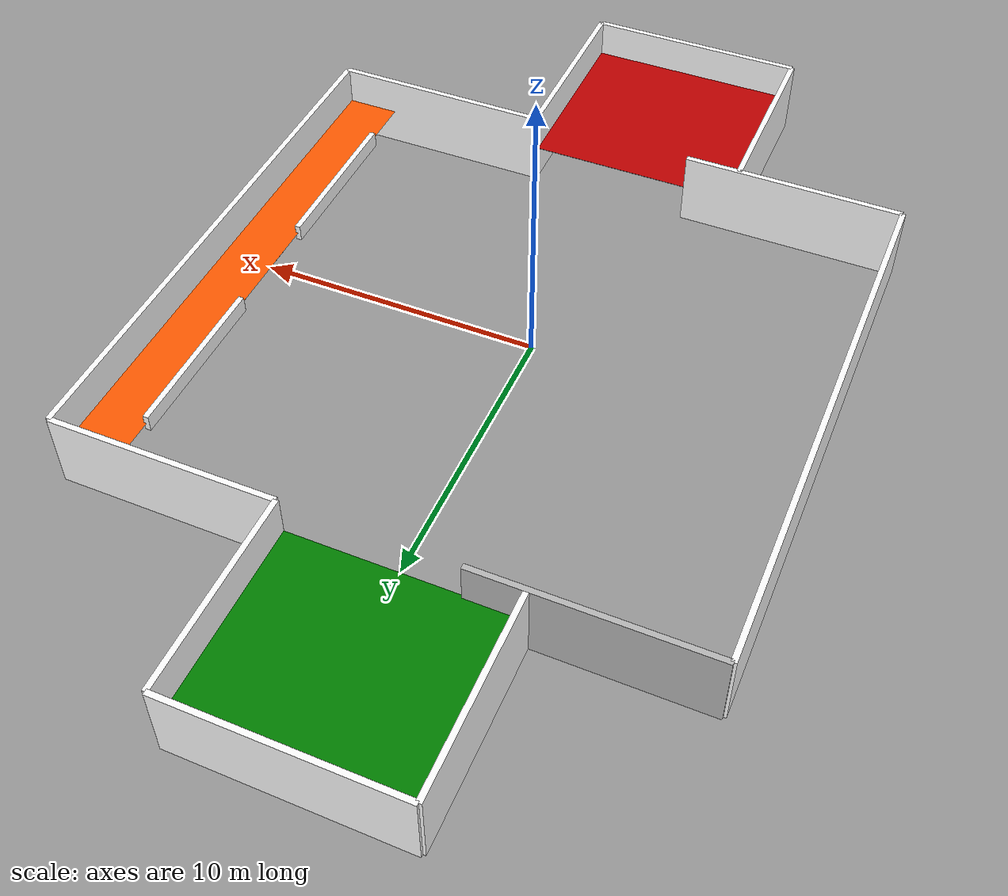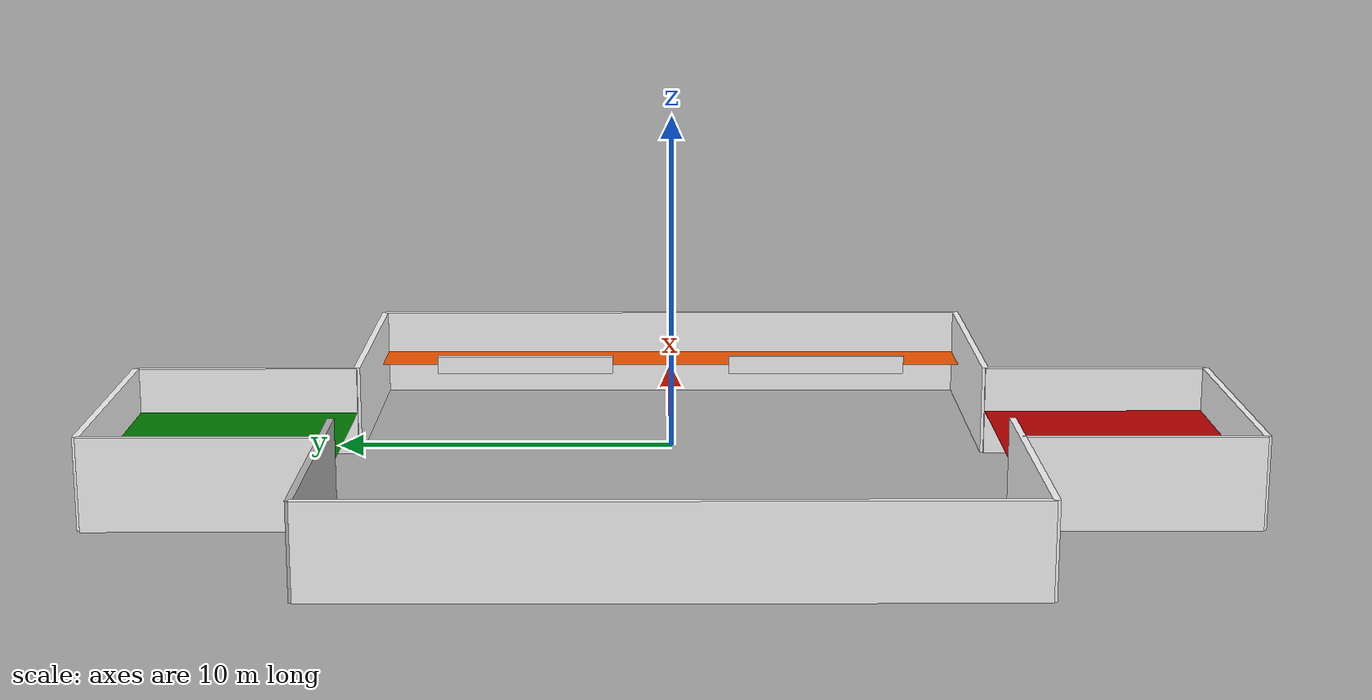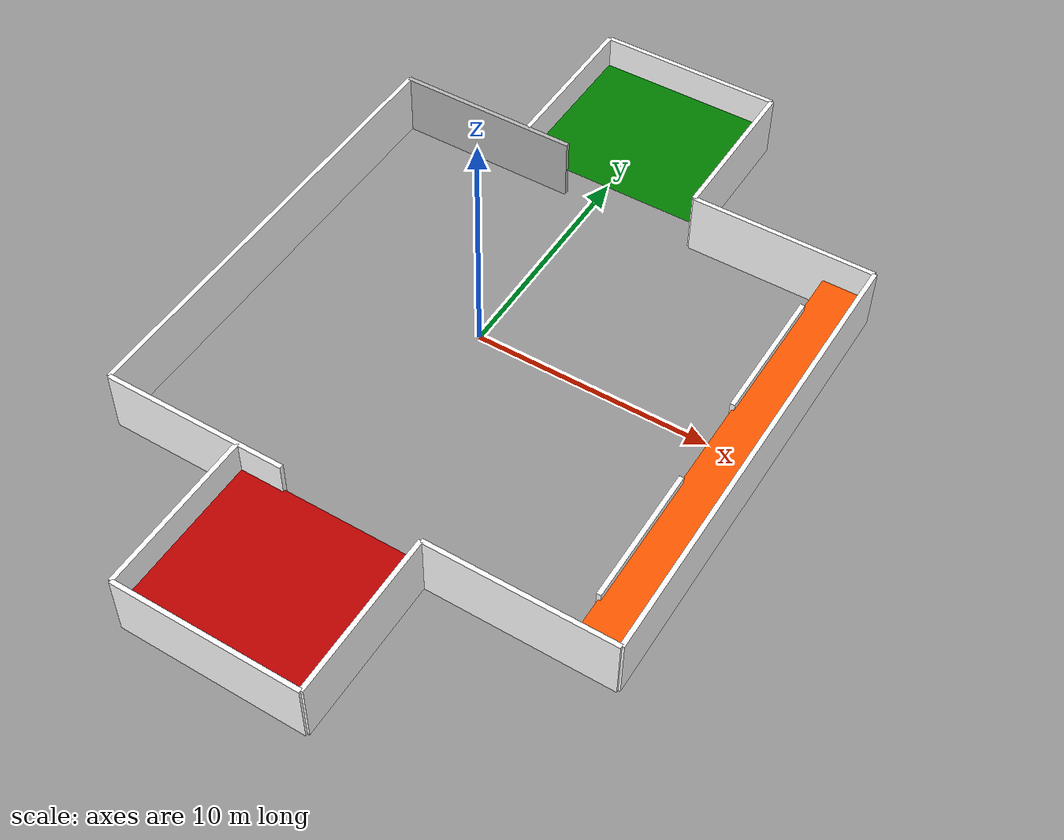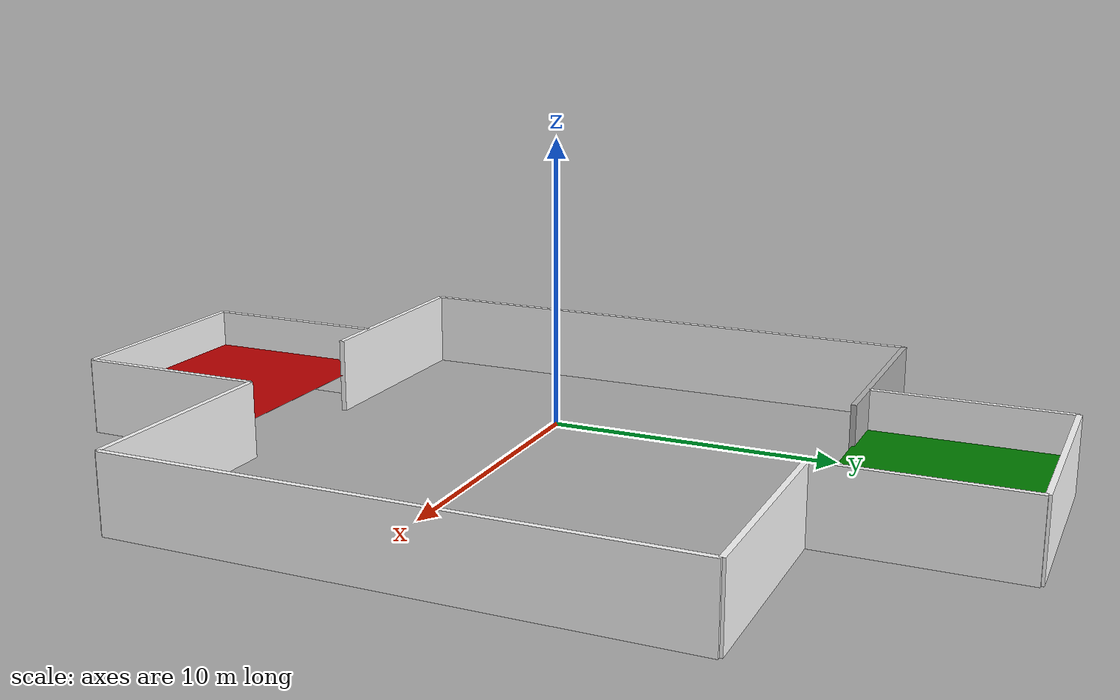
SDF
<?xml version="1.0" ?>
<sdf version="1.5">
  <model name="warehouse_walls">
    <static>true</static>

    <link name="wall0_link0">
      <pose>-10 0 0 0 0 1.57</pose>
      <collision name="collision">
        <geometry>
          <box>
            <size>20 0.2 2.8</size>
          </box>
        </geometry>
      </collision>
      <visual name="visual">
        <cast_shadows>false</cast_shadows>
        <geometry>
          <box>
            <size>20 0.2 2.8</size>
          </box>
        </geometry>
        <material>
          <diffuse>1.0 1.0 1.0</diffuse>
          <specular>1.0 1.0 1.0</specular>
          <pbr>
            <metal>
              <albedo_map>model://warehouse_walls/materials/textures/grey_wall.png</albedo_map>
            </metal>
          </pbr>
        </material>
      </visual>
    </link>

    <link name="wall1_link0">
      <pose>8 -10 0 0 0 0</pose>
      <collision name="collision">
        <geometry>
          <box>
            <size>8 0.2 2.8</size>
          </box>
        </geometry>
      </collision>
      <visual name="visual">
        <cast_shadows>false</cast_shadows>
        <geometry>
          <box>
            <size>8 0.2 2.8</size>
          </box>
        </geometry>
        <material>
          <diffuse>1.0 1.0 1.0</diffuse>
          <specular>1.0 1.0 1.0</specular>
          <pbr>
            <metal>
              <albedo_map>model://warehouse_walls/materials/textures/grey_wall.png</albedo_map>
            </metal>
          </pbr>
        </material>
      </visual>
    </link>

    <link name="wall1_link1">
      <pose>4 -13.5 0 0 0 1.57</pose>
      <collision name="collision">
        <geometry>
          <box>
            <size>7 0.2 2.8</size>
          </box>
        </geometry>
      </collision>
      <visual name="visual">
        <cast_shadows>false</cast_shadows>
        <geometry>
          <box>
            <size>7 0.2 2.8</size>
          </box>
        </geometry>
        <material>
          <diffuse>1.0 1.0 1.0</diffuse>
          <specular>1.0 1.0 1.0</specular>
          <pbr>
            <metal>
              <albedo_map>model://warehouse_walls/materials/textures/grey_wall.png</albedo_map>
            </metal>
          </pbr>
        </material>
      </visual>
    </link>

    <link name="wall1_link2">
      <pose>0 -17 0 0 0 0</pose>
      <collision name="collision">
        <geometry>
          <box>
            <size>8 0.2 2.8</size>
          </box>
        </geometry>
      </collision>
      <visual name="visual">
        <cast_shadows>false</cast_shadows>
        <geometry>
          <box>
            <size>8 0.2 2.8</size>
          </box>
        </geometry>
        <material>
          <diffuse>1.0 1.0 1.0</diffuse>
          <specular>1.0 1.0 1.0</specular>
          <pbr>
            <metal>
              <albedo_map>model://warehouse_walls/materials/textures/grey_wall.png</albedo_map>
            </metal>
          </pbr>
        </material>
      </visual>
    </link>

    <link name="wall1_link3">
      <pose>-4 -13.5 0 0 0 1.57</pose>
      <collision name="collision">
        <geometry>
          <box>
            <size>7 0.2 2.8</size>
          </box>
        </geometry>
      </collision>
      <visual name="visual">
        <cast_shadows>false</cast_shadows>
        <geometry>
          <box>
            <size>7 0.2 2.8</size>
          </box>
        </geometry>
        <material>
          <diffuse>1.0 1.0 1.0</diffuse>
          <specular>1.0 1.0 1.0</specular>
          <pbr>
            <metal>
              <albedo_map>model://warehouse_walls/materials/textures/grey_wall.png</albedo_map>
            </metal>
          </pbr>
        </material>
      </visual>
    </link>

    <link name="wall1_link4">
      <pose>-6 -10 0 0 0 0</pose>
      <collision name="collision">
        <geometry>
          <box>
            <size>8 0.2 2.8</size>
          </box>
        </geometry>
      </collision>
      <visual name="visual">
        <cast_shadows>false</cast_shadows>
        <geometry>
          <box>
            <size>8 0.2 2.8</size>
          </box>
        </geometry>
        <material>
          <diffuse>1.0 1.0 1.0</diffuse>
          <specular>1.0 1.0 1.0</specular>
          <pbr>
            <metal>
              <albedo_map>model://warehouse_walls/materials/textures/grey_wall.png</albedo_map>
            </metal>
          </pbr>
        </material>
      </visual>
    </link>

    <link name="wall2_link0">
      <pose>8 10 0 0 0 0</pose>
      <collision name="collision">
        <geometry>
          <box>
            <size>8 0.2 2.8</size>
          </box>
        </geometry>
      </collision>
      <visual name="visual">
        <cast_shadows>false</cast_shadows>
        <geometry>
          <box>
            <size>8 0.2 2.8</size>
          </box>
        </geometry>
        <material>
          <diffuse>1.0 1.0 1.0</diffuse>
          <specular>1.0 1.0 1.0</specular>
          <pbr>
            <metal>
              <albedo_map>model://warehouse_walls/materials/textures/grey_wall.png</albedo_map>
            </metal>
          </pbr>
        </material>
      </visual>
    </link>

    <link name="wall2_link1">
      <pose>4 13.5 0 0 0 1.57</pose>
      <collision name="collision">
        <geometry>
          <box>
            <size>7 0.2 2.8</size>
          </box>
        </geometry>
      </collision>
      <visual name="visual">
        <cast_shadows>false</cast_shadows>
        <geometry>
          <box>
            <size>7 0.2 2.8</size>
          </box>
        </geometry>
        <material>
          <diffuse>1.0 1.0 1.0</diffuse>
          <specular>1.0 1.0 1.0</specular>
          <pbr>
            <metal>
              <albedo_map>model://warehouse_walls/materials/textures/grey_wall.png</albedo_map>
            </metal>
          </pbr>
        </material>
      </visual>
    </link>

    <link name="wall2_link2">
      <pose>0 17 0 0 0 0</pose>
      <collision name="collision">
        <geometry>
          <box>
            <size>8 0.2 2.8</size>
          </box>
        </geometry>
      </collision>
      <visual name="visual">
        <cast_shadows>false</cast_shadows>
        <geometry>
          <box>
            <size>8 0.2 2.8</size>
          </box>
        </geometry>
        <material>
          <diffuse>1.0 1.0 1.0</diffuse>
          <specular>1.0 1.0 1.0</specular>
          <pbr>
            <metal>
              <albedo_map>model://warehouse_walls/materials/textures/grey_wall.png</albedo_map>
            </metal>
          </pbr>
        </material>
      </visual>
    </link>

    <link name="wall2_link3">
      <pose>-4 13.5 0 0 0 1.57</pose>
      <collision name="collision">
        <geometry>
          <box>
            <size>7 0.2 2.8</size>
          </box>
        </geometry>
      </collision>
      <visual name="visual">
        <cast_shadows>false</cast_shadows>
        <geometry>
          <box>
            <size>7 0.2 2.8</size>
          </box>
        </geometry>
        <material>
          <diffuse>1.0 1.0 1.0</diffuse>
          <specular>1.0 1.0 1.0</specular>
          <pbr>
            <metal>
              <albedo_map>model://warehouse_walls/materials/textures/grey_wall.png</albedo_map>
            </metal>
          </pbr>
        </material>
      </visual>
    </link>

    <link name="wall2_link4">
      <pose>-6 10 0 0 0 0</pose>
      <collision name="collision">
        <geometry>
          <box>
            <size>8 0.2 2.8</size>
          </box>
        </geometry>
      </collision>
      <visual name="visual">
        <cast_shadows>false</cast_shadows>
        <geometry>
          <box>
            <size>8 0.2 2.8</size>
          </box>
        </geometry>
        <material>
          <pbr>
            <metal>
              <albedo_map>model://warehouse_walls/materials/textures/grey_wall.png</albedo_map>
            </metal>
          </pbr>
        </material>
      </visual>
    </link>

    <link name="wall3_link0">
      <pose>12 0 0 0 0 1.57</pose>
      <collision name="collision">
        <geometry>
          <box>
            <size>20 0.2 2.8</size>
          </box>
        </geometry>
      </collision>
      <visual name="visual">
        <cast_shadows>false</cast_shadows>
        <geometry>
          <box>
            <size>20 0.2 2.8</size>
          </box>
        </geometry>
        <material>
          <diffuse>1.0 1.0 1.0</diffuse>
          <specular>1.0 1.0 1.0</specular>
          <pbr>
            <metal>
              <albedo_map>model://warehouse_walls/materials/textures/grey_wall.png</albedo_map>
            </metal>
          </pbr>
        </material>
      </visual>
    </link>

    <link name="wall4_link0">
      <pose>10 -5 0 0 0 1.57</pose>
      <collision name="collision">
        <geometry>
          <box>
            <size>6 0.2 0.6</size>
          </box>
        </geometry>
      </collision>
      <visual name="visual">
        <cast_shadows>false</cast_shadows>
        <geometry>
          <box>
            <size>6 0.2 0.6</size>
          </box>
        </geometry>
        <material>
          <diffuse>1.0 1.0 1.0</diffuse>
          <specular>1.0 1.0 1.0</specular>
          <pbr>
            <metal>
              <albedo_map>model://warehouse_walls/materials/textures/grey_wall.png</albedo_map>
            </metal>
          </pbr>
        </material>
      </visual>
    </link>

    <link name="wall4_link1">
      <pose>10 5 0 0 0 1.57</pose>
      <collision name="collision">
        <geometry>
          <box>
            <size>6 0.2 0.6</size>
          </box>
        </geometry>
      </collision>
      <visual name="visual">
        <cast_shadows>false</cast_shadows>
        <geometry>
          <box>
            <size>6 0.2 0.6</size>
          </box>
        </geometry>
        <material>
          <diffuse>1.0 1.0 1.0</diffuse>
          <specular>1.0 1.0 1.0</specular>
          <pbr>
            <metal>
              <albedo_map>model://warehouse_walls/materials/textures/grey_wall.png</albedo_map>
            </metal>
          </pbr>
        </material>
      </visual>
    </link>

    <link name="green_area">
      <pose>0 13.5 0 0.001 0 0</pose>
      <visual name='visual'>
        <cast_shadows>false</cast_shadows>
        <geometry>
          <plane>
            <normal>0 0 1</normal>
            <size>8 7</size>
          </plane>
        </geometry>
        <material>
          <ambient>0 0.5 0 1</ambient>
          <diffuse>0 0.5 0 1</diffuse>
          <specular>0 0 0 1</specular>
          <emissive>0 0 0 0</emissive>
        </material>
      </visual>
    </link>
    <link name="red_area">
      <pose>0 -13.5 0.001 0 0 0</pose>
      <visual name='visual'>
        <cast_shadows>false</cast_shadows>
        <geometry>
          <plane>
            <normal>0 0 1</normal>
            <size>8 7</size>
          </plane>
        </geometry>
        <material>
          <ambient>0.75 0 0 1</ambient>
          <diffuse>0.75 0 0 1</diffuse>
          <specular>0 0 0 1</specular>
          <emissive>0 0 0 0</emissive>
        </material>
      </visual>
    </link>

    <link name="resting_area">
      <pose>11 0 0.001 0 0 1.57</pose>
      <visual name='visual_resting_area'>
        <cast_shadows>false</cast_shadows>
        <geometry>
          <plane>
            <normal>0 0 1</normal>
            <size>20 2</size>
          </plane>
        </geometry>
        <material>
          <ambient>1 0.35 0 1</ambient>
          <diffuse>1 0.35 0 1</diffuse>
          <specular>0 0 0 1</specular>
          <emissive>0 0 0 0</emissive>
        </material>
      </visual>
    </link>
  </model>
</sdf>
